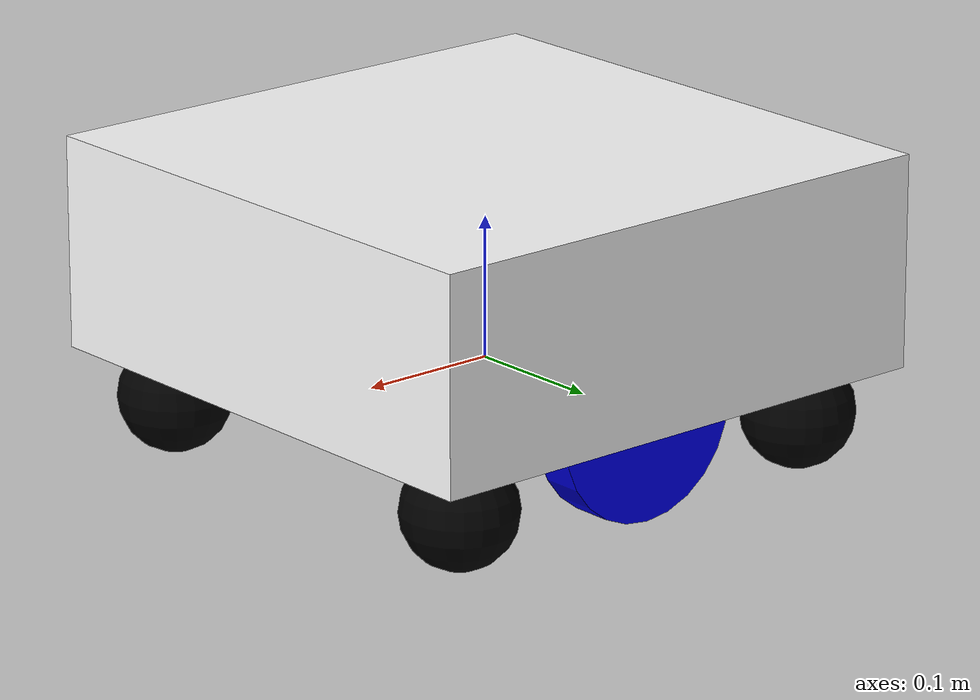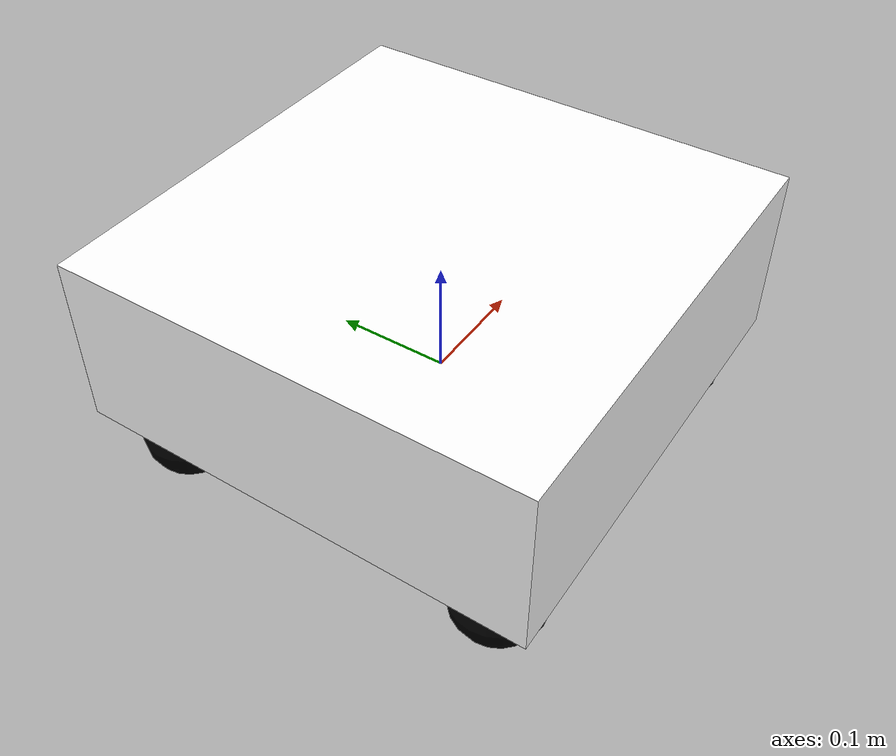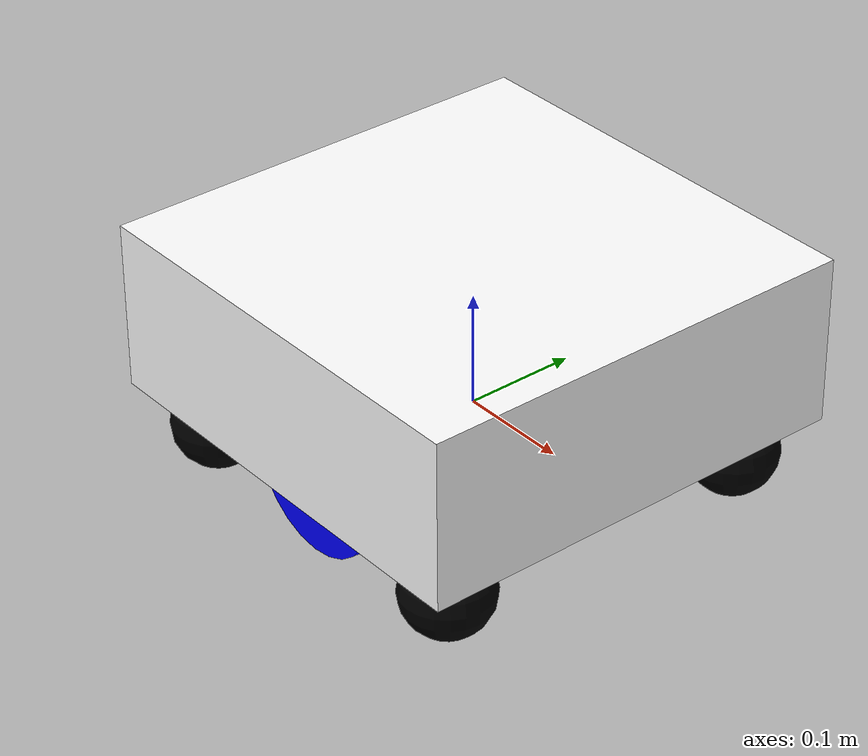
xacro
<?xml version="1.0"?>
<robot xmlns:xacro="http://www.ros.org/wiki/xacro">

    <xacro:include filename="inertial_macros.xacro"/>

    <material name="white">
        <color rgba="1 1 1 1" />
    </material>

    <material name="blue">
        <color rgba="0 0 1 1" />
    </material>

    <material name="orange">
        <color rgba="1 0.65 0 1" />
    </material>

    <material name="black">
        <color rgba="0 0 0 1" />
    </material>

    <material name="red">
        <color rgba="1 0 0 1" />
    </material>

    <!--BASE LINK-->
    <link name="base_link">
        <!-- You can add visuals and collision properties for the base_link here if needed -->
    </link>

    <joint name="base_footprint_joint" type="fixed">
        <parent link="base_link"/>
        <child link="base_footprint"/>
        <origin xyz="0 0 0" rpy="0 0 0"/>
    </joint>

    <link name="base_footprint">
    </link>

    <!-- CHASSIS LINK -->
    <joint name="chassis_joint" type="fixed">
        <parent link="base_link"/>
        <child link="chassis"/>
        <origin xyz="-0.2 0 0"/>
    </joint>

    <link name="chassis">
        <visual>
            <origin xyz="0.2 0 0.075" />
            <geometry>
                <box size="0.4 0.4 0.15" />
            </geometry>
            <material name="white" />
        </visual>
        <collision>
            <origin xyz="0.2 0 0.015" />
            <geometry>
                <box size="0.4 0.4 0.15" />
            </geometry>
        </collision>
        <xacro:inertial_box mass="2.0" x="0.4" y="0.4" z="0.15">
            <origin xyz="0.2 0 0.015" rpy="0 0 0"/>
        </xacro:inertial_box>
    </link>
    <gazebo reference="chassis">
        <material>Gazebo/White</material>
    </gazebo>

    <!--LEFT WHEEL LINK-->
    <joint name="left_wheel_joint" type="continuous">
        <parent link="base_link"/>
        <child link="left_wheel"/>
        <origin xyz="0 0.15 0" rpy="-${pi/2} 0 0"/>
        <axis xyz="0 0 1"/>
    </joint>

    <link name="left_wheel">
        <visual>
            <origin xyz="0 0 0"/>
            <geometry>
                <cylinder radius="0.072" length="0.029"/>
            </geometry>
            <material name="blue"/>
        </visual>
        <collision>
            <origin xyz="0 0 0"/>
            <geometry>
                <cylinder radius="0.072" length="0.029"/>
            </geometry>
        </collision>
        <xacro:inertial_cylinder mass="0.1" length="0.029" radius="0.072">
            <origin xyz="0 0 0" rpy="0 0 0"/>
        </xacro:inertial_cylinder>
    </link>
    <gazebo reference="left_wheel">
        <material>Gazebo/Blue</material>
    </gazebo>

    <!--RIGHT WHEEL LINK-->
    <joint name="right_wheel_joint" type="continuous">
        <parent link="base_link"/>
        <child link="right_wheel"/>
        <origin xyz="0 -0.15 0" rpy="${pi/2} 0 0"/>
        <axis xyz="0 0 -1"/>
    </joint>

    <link name="right_wheel">
        <visual>
            <origin xyz="0 0 0"/>
            <geometry>
                <cylinder radius="0.072" length="0.029"/>
            </geometry>
            <material name="blue"/>
        </visual>
        <collision>
            <origin xyz="0 0 0"/>
            <geometry>
                <cylinder radius="0.072" length="0.029"/>
            </geometry>
        </collision>
        <xacro:inertial_cylinder mass="0.1" length="0.029" radius="0.072">
            <origin xyz="0 0 0" rpy="0 0 0"/>
        </xacro:inertial_cylinder>
    </link>
    <gazebo reference="right_wheel">
        <material>Gazebo/Blue</material>
    </gazebo>

    <!--CASTER WHEEL FRONT RIGHT-->
    <joint name="caster_wheel_front_right_joint" type="fixed">
        <parent link="chassis"/>
        <child link="caster_wheel_front_right"/>
        <origin xyz="0.35 -0.15 -0.032"/>
    </joint>

    <link name="caster_wheel_front_right">
        <visual>
            <geometry>
                <sphere radius="0.04"/>
            </geometry>
            <material name="black"/>
        </visual>
        <collision>
            <geometry>
                <sphere radius="0.04"/>
            </geometry>
        </collision>
        <xacro:inertial_sphere mass="0.1" radius="0.04">
            <origin xyz="0 0 0" rpy="0 0 0"/>
        </xacro:inertial_sphere>
    </link>
    <gazebo reference="caster_wheel_front_right">
        <material>Gazebo/Black</material>
        <mu1 value="0.0001"/>
        <mu2 value="0.0001"/>
    </gazebo>

    <!--CASTER WHEEL FRONT LEFT-->
    <joint name="caster_wheel_front_left_joint" type="fixed">
        <parent link="chassis"/>
        <child link="caster_wheel_front_left"/>
        <origin xyz="0.35 0.15 -0.032"/>
    </joint>

    <link name="caster_wheel_front_left">
        <visual>
            <geometry>
                <sphere radius="0.04"/>
            </geometry>
            <material name="black"/>
        </visual>
        <collision>
            <geometry>
                <sphere radius="0.04"/>
            </geometry>
        </collision>
        <xacro:inertial_sphere mass="0.1" radius="0.04">
            <origin xyz="0 0 0" rpy="0 0 0"/>
        </xacro:inertial_sphere>
    </link>
    <gazebo reference="caster_wheel_front_left">
        <material>Gazebo/Black</material>
        <mu1 value="0.0001"/>
        <mu2 value="0.0001"/>
    </gazebo>

    <!--CASTER WHEEL BACK RIGHT-->
    <joint name="caster_wheel_back_right_joint" type="fixed">
        <parent link="chassis"/>
        <child link="caster_wheel_back_right"/>
        <origin xyz="0.05 -0.15 -0.032"/>
    </joint>

    <link name="caster_wheel_back_right">
        <visual>
            <geometry>
                <sphere radius="0.04"/>
            </geometry>
            <material name="black"/>
        </visual>
        <collision>
            <geometry>
                <sphere radius="0.04"/>
            </geometry>
        </collision>

        <xacro:inertial_sphere mass="0.1" radius="0.04">
            <origin xyz="0 0 0" rpy="0 0 0"/>
        </xacro:inertial_sphere>
    </link>
    <gazebo reference="caster_wheel_back_right">
        <material>Gazebo/Black</material>
        <mu1 value="0.0001"/>
        <mu2 value="0.0001"/>
    </gazebo>

    <!--CASTER WHEEL BACK LEFT-->
    <joint name="caster_wheel_back_left_joint" type="fixed">
        <parent link="chassis"/>
        <child link="caster_wheel_back_left"/>
        <origin xyz="0.05 0.15 -0.032"/>
    </joint>

    <link name="caster_wheel_back_left">
        <visual>
            <geometry>
                <sphere radius="0.04"/>
            </geometry>
            <material name="black"/>
        </visual>
        <collision>
            <geometry>
                <sphere radius="0.04"/>
            </geometry>
        </collision>
        <xacro:inertial_sphere mass="0.1" radius="0.04">
            <origin xyz="0 0 0" rpy="0 0 0"/>
        </xacro:inertial_sphere>
    </link>
    <gazebo reference="caster_wheel_back_left">
        <material>Gazebo/Black</material>
        <mu1 value="0.0001"/>
        <mu2 value="0.0001"/>
    </gazebo>

</robot>
